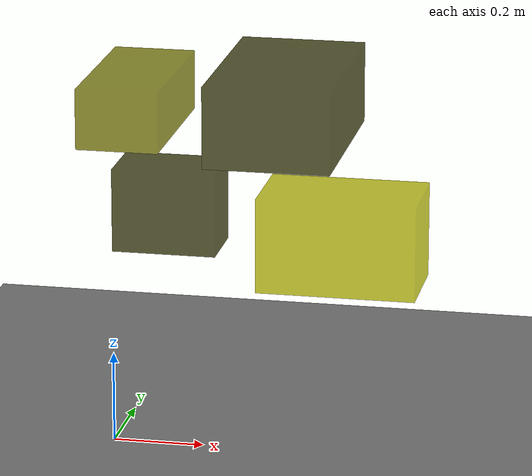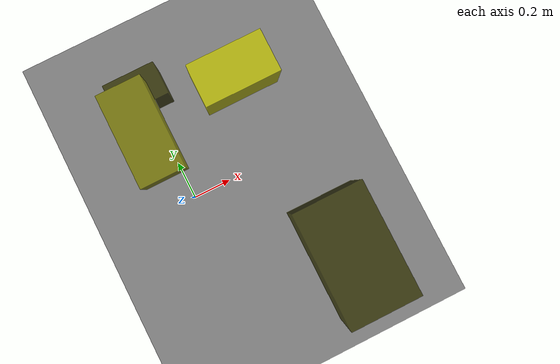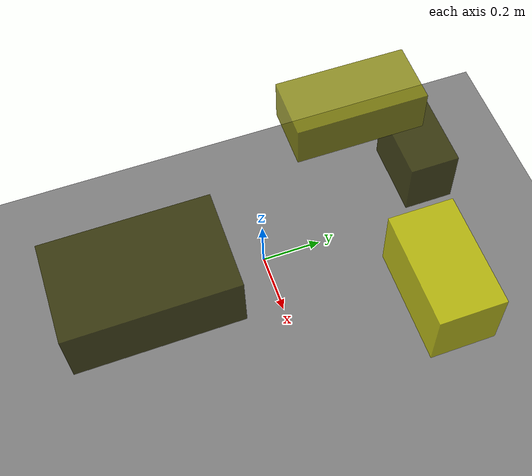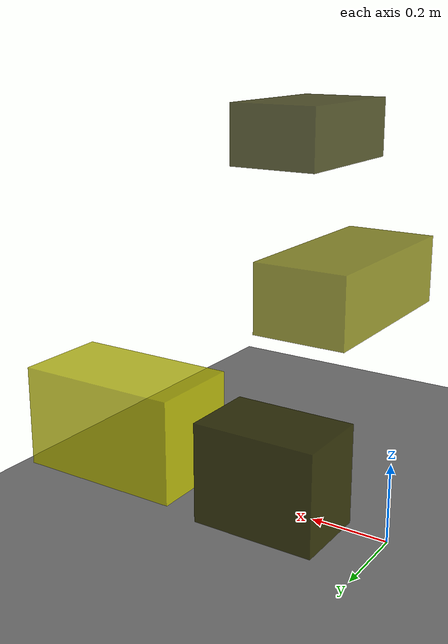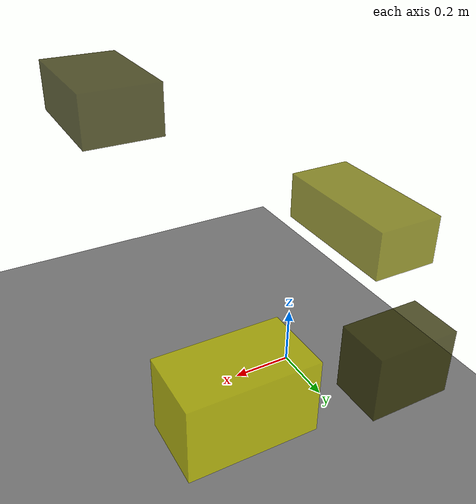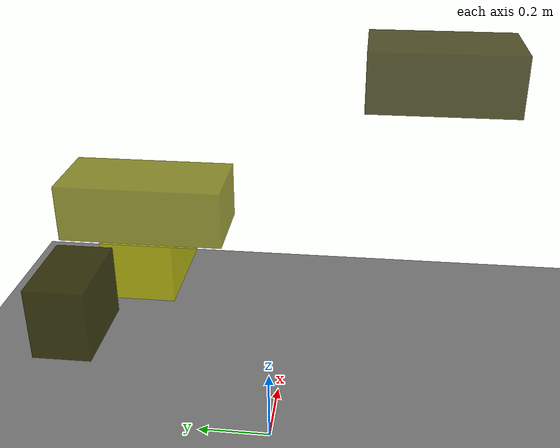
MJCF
<?xml version="1.0"?>
<mujoco model="obstacle_scene">
  <compiler angle="radian" coordinate="local"/>
  <option timestep="0.001" gravity="0 0 -9.81"/>

  <asset>
    <material name="obstacle_mat" rgba="0.8 0.8 0.0 0.8"/>
    <material name="ground_mat" rgba="0.5 0.5 0.5 1"/>
  </asset>

  <worldbody>
    <!-- Ground plane -->
    <geom name="ground" type="plane" size="3 3 0.1" material="ground_mat"/>

    <!-- Obstacles -->
    <body name="obstacle_0" pos="0.460060 -0.421801 0.902319">
      <geom name="obs_0" type="box" size="0.126663 0.205424 0.082735" rgba="0.2 0.2 0.0 0.8"/>
    </body>
    <body name="obstacle_1" pos="-0.011088 0.286419 0.700445">
      <geom name="obs_1" type="box" size="0.091989 0.193137 0.067990" rgba="0.5 0.5 0.0 0.8"/>
    </body>
    <body name="obstacle_2" pos="0.436699 0.415503 0.364384">
      <geom name="obs_2" type="box" size="0.181957 0.103664 0.110490" rgba="0.8 0.8 0.0 0.8"/>
    </body>
    <body name="obstacle_3" pos="0.013698 0.516364 0.388965">
      <geom name="obs_3" type="box" size="0.121136 0.077076 0.098332" rgba="0.2 0.2 0.0 0.8"/>
    </body>
  </worldbody>
</mujoco>
